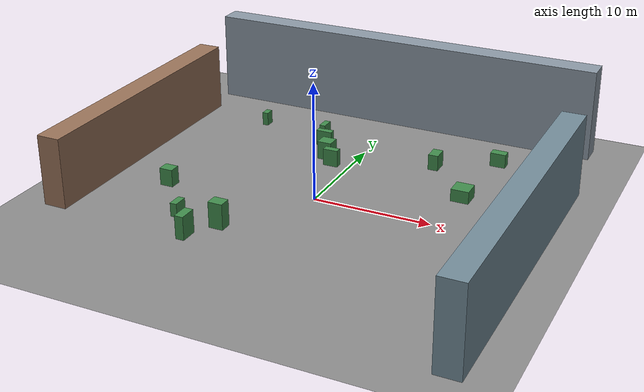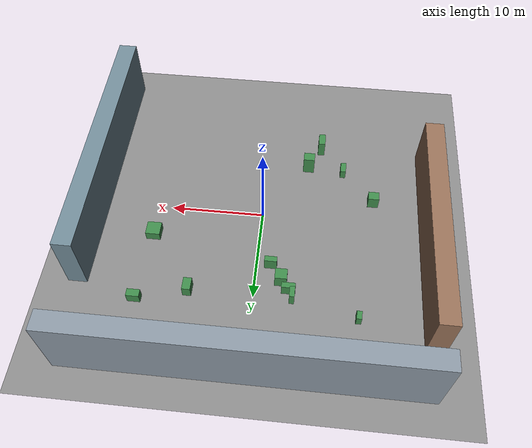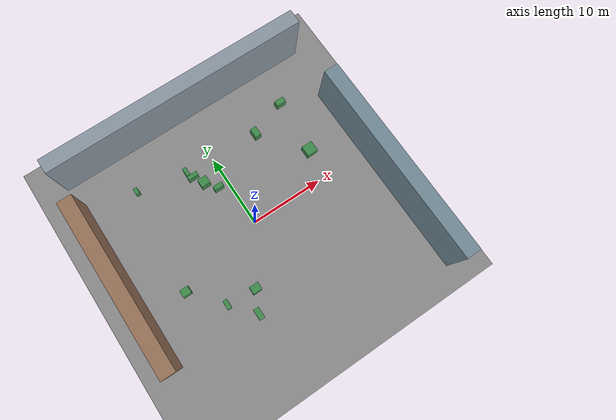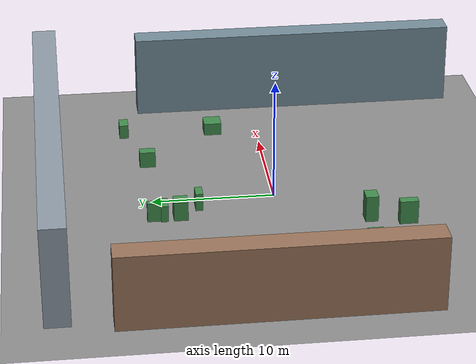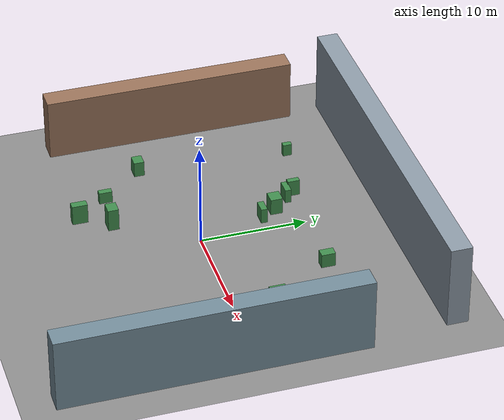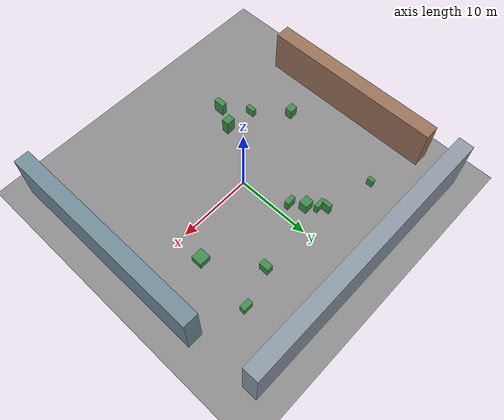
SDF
<?xml version="1.0"?>
<sdf version="1.6">
  <world name="outdoor_dark_high_2">
    <physics name="default_physics" type="ode">
      <real_time_update_rate>1000</real_time_update_rate>
      <max_step_size>0.001</max_step_size>
    </physics>
    <scene>
      <ambient>0.01 0.01 0.01 1</ambient>
      <background>0.08 0.09 0.12 1</background>
      <shadows>true</shadows>
    </scene>
    <light name="sun" type="directional">
      <cast_shadows>true</cast_shadows>
      <pose>0 0 20 0 0 0</pose>
      <diffuse>0.04 0.04 0.04 1.0</diffuse>
      <specular>0.04 0.04 0.04 1.0</specular>
      <direction>-0.5 0.2 -1</direction>
    </light>
    <model name="ground_plane">
      <static>true</static>
      <link name="link">
        <collision name="collision"><geometry><plane><normal>0 0 1</normal><size>100 100</size></plane></geometry></collision>
        <visual name="visual">
          <geometry><plane><normal>0 0 1</normal><size>100 100</size></plane></geometry>
          <material><ambient>0.35 0.35 0.35 1</ambient><diffuse>0.55 0.55 0.55 1</diffuse></material>
        </visual>
      </link>
    </model>

    <model name="building_north">
      <static>true</static>
      <pose>0.0000 18.0000 4.0000 0 0 0</pose>
      <link name="link">
        <collision name="collision"><geometry><box><size>36 2 8</size></box></geometry></collision>
        <visual name="visual">
          <geometry><box><size>36 2 8</size></box></geometry>
          <material><ambient>0.55 0.60 0.65 1</ambient><diffuse>0.55 0.60 0.65 1</diffuse></material>
        </visual>
      </link>
    </model>

    <model name="building_west">
      <static>true</static>
      <pose>-18.0000 2.0000 3.0000 0 0 0</pose>
      <link name="link">
        <collision name="collision"><geometry><box><size>2 24 6</size></box></geometry></collision>
        <visual name="visual">
          <geometry><box><size>2 24 6</size></box></geometry>
          <material><ambient>0.60 0.45 0.35 1</ambient><diffuse>0.60 0.45 0.35 1</diffuse></material>
        </visual>
      </link>
    </model>

    <model name="facade_east">
      <static>true</static>
      <pose>18.0000 -4.0000 3.5000 0 0 0</pose>
      <link name="link">
        <collision name="collision"><geometry><box><size>2 28 7</size></box></geometry></collision>
        <visual name="visual">
          <geometry><box><size>2 28 7</size></box></geometry>
          <material><ambient>0.45 0.55 0.60 1</ambient><diffuse>0.45 0.55 0.60 1</diffuse></material>
        </visual>
      </link>
    </model>

    <model name="outdoor_feature_0">
      <static>true</static>
      <pose>11.6795 11.5562 1.1059 0 0 0</pose>
      <link name="link">
        <collision name="collision"><geometry><box><size>1.3179371342564536 0.7644003711263989 1.2036132386524334</size></box></geometry></collision>
        <visual name="visual">
          <geometry><box><size>1.3179371342564536 0.7644003711263989 1.2036132386524334</size></box></geometry>
          <material><ambient>0.25 0.55 0.30 1</ambient><diffuse>0.25 0.55 0.30 1</diffuse></material>
        </visual>
      </link>
    </model>

    <model name="outdoor_feature_1">
      <static>true</static>
      <pose>-3.5057 9.2445 1.1218 0 0 0</pose>
      <link name="link">
        <collision name="collision"><geometry><box><size>1.4074263593282161 0.5805983543520831 1.3683547774079987</size></box></geometry></collision>
        <visual name="visual">
          <geometry><box><size>1.4074263593282161 0.5805983543520831 1.3683547774079987</size></box></geometry>
          <material><ambient>0.25 0.55 0.30 1</ambient><diffuse>0.25 0.55 0.30 1</diffuse></material>
        </visual>
      </link>
    </model>

    <model name="outdoor_feature_2">
      <static>true</static>
      <pose>-5.9475 -9.8512 1.1545 0 0 0</pose>
      <link name="link">
        <collision name="collision"><geometry><box><size>0.7271085415697558 1.4613697500233185 1.9573059894304219</size></box></geometry></collision>
        <visual name="visual">
          <geometry><box><size>0.7271085415697558 1.4613697500233185 1.9573059894304219</size></box></geometry>
          <material><ambient>0.25 0.55 0.30 1</ambient><diffuse>0.25 0.55 0.30 1</diffuse></material>
        </visual>
      </link>
    </model>

    <model name="outdoor_feature_3">
      <static>true</static>
      <pose>6.6345 9.8640 0.7097 0 0 0</pose>
      <link name="link">
        <collision name="collision"><geometry><box><size>0.8644297750183705 1.3104406104314288 1.3731786830187642</size></box></geometry></collision>
        <visual name="visual">
          <geometry><box><size>0.8644297750183705 1.3104406104314288 1.3731786830187642</size></box></geometry>
          <material><ambient>0.25 0.55 0.30 1</ambient><diffuse>0.25 0.55 0.30 1</diffuse></material>
        </visual>
      </link>
    </model>

    <model name="outdoor_feature_4">
      <static>true</static>
      <pose>-11.9670 -2.7129 0.8542 0 0 0</pose>
      <link name="link">
        <collision name="collision"><geometry><box><size>1.151237112006228 0.9763171936984073 1.5069108385692573</size></box></geometry></collision>
        <visual name="visual">
          <geometry><box><size>1.151237112006228 0.9763171936984073 1.5069108385692573</size></box></geometry>
          <material><ambient>0.25 0.55 0.30 1</ambient><diffuse>0.25 0.55 0.30 1</diffuse></material>
        </visual>
      </link>
    </model>

    <model name="outdoor_feature_5">
      <static>true</static>
      <pose>-10.5716 11.5896 0.8673 0 0 0</pose>
      <link name="link">
        <collision name="collision"><geometry><box><size>0.5265232372239406 0.8503414913207352 1.194762085166666</size></box></geometry></collision>
        <visual name="visual">
          <geometry><box><size>0.5265232372239406 0.8503414913207352 1.194762085166666</size></box></geometry>
          <material><ambient>0.25 0.55 0.30 1</ambient><diffuse>0.25 0.55 0.30 1</diffuse></material>
        </visual>
      </link>
    </model>

    <model name="outdoor_feature_6">
      <static>true</static>
      <pose>-8.5634 -6.7585 0.5597 0 0 0</pose>
      <link name="link">
        <collision name="collision"><geometry><box><size>0.5785342528656849 1.236067660945103 1.1607536618061736</size></box></geometry></collision>
        <visual name="visual">
          <geometry><box><size>0.5785342528656849 1.236067660945103 1.1607536618061736</size></box></geometry>
          <material><ambient>0.25 0.55 0.30 1</ambient><diffuse>0.25 0.55 0.30 1</diffuse></material>
        </visual>
      </link>
    </model>

    <model name="outdoor_feature_7">
      <static>true</static>
      <pose>-2.6663 7.8862 0.5088 0 0 0</pose>
      <link name="link">
        <collision name="collision"><geometry><box><size>1.2486542857955758 1.1407245659584684 2.0982379577114</size></box></geometry></collision>
        <visual name="visual">
          <geometry><box><size>1.2486542857955758 1.1407245659584684 2.0982379577114</size></box></geometry>
          <material><ambient>0.25 0.55 0.30 1</ambient><diffuse>0.25 0.55 0.30 1</diffuse></material>
        </visual>
      </link>
    </model>

    <model name="outdoor_feature_8">
      <static>true</static>
      <pose>-3.9134 10.0463 1.2959 0 0 0</pose>
      <link name="link">
        <collision name="collision"><geometry><box><size>0.5196159234587759 1.1317503705042524 1.5943914611519823</size></box></geometry></collision>
        <visual name="visual">
          <geometry><box><size>0.5196159234587759 1.1317503705042524 1.5943914611519823</size></box></geometry>
          <material><ambient>0.25 0.55 0.30 1</ambient><diffuse>0.25 0.55 0.30 1</diffuse></material>
        </visual>
      </link>
    </model>

    <model name="outdoor_feature_9">
      <static>true</static>
      <pose>-1.4741 6.3151 0.8679 0 0 0</pose>
      <link name="link">
        <collision name="collision"><geometry><box><size>1.2871739150782795 0.5963808291606688 1.4848654630522655</size></box></geometry></collision>
        <visual name="visual">
          <geometry><box><size>1.2871739150782795 0.5963808291606688 1.4848654630522655</size></box></geometry>
          <material><ambient>0.25 0.55 0.30 1</ambient><diffuse>0.25 0.55 0.30 1</diffuse></material>
        </visual>
      </link>
    </model>

    <model name="outdoor_feature_10">
      <static>true</static>
      <pose>11.1394 3.9238 1.2296 0 0 0</pose>
      <link name="link">
        <collision name="collision"><geometry><box><size>1.4932031099667475 1.4729017885479982 1.047805957235434</size></box></geometry></collision>
        <visual name="visual">
          <geometry><box><size>1.4932031099667475 1.4729017885479982 1.047805957235434</size></box></geometry>
          <material><ambient>0.25 0.55 0.30 1</ambient><diffuse>0.25 0.55 0.30 1</diffuse></material>
        </visual>
      </link>
    </model>

    <model name="outdoor_feature_11">
      <static>true</static>
      <pose>-4.6236 -7.1039 0.9603 0 0 0</pose>
      <link name="link">
        <collision name="collision"><geometry><box><size>1.2178911461327804 1.0140009818447369 2.35815356177625</size></box></geometry></collision>
        <visual name="visual">
          <geometry><box><size>1.2178911461327804 1.0140009818447369 2.35815356177625</size></box></geometry>
          <material><ambient>0.25 0.55 0.30 1</ambient><diffuse>0.25 0.55 0.30 1</diffuse></material>
        </visual>
      </link>
    </model>
  </world>
</sdf>
